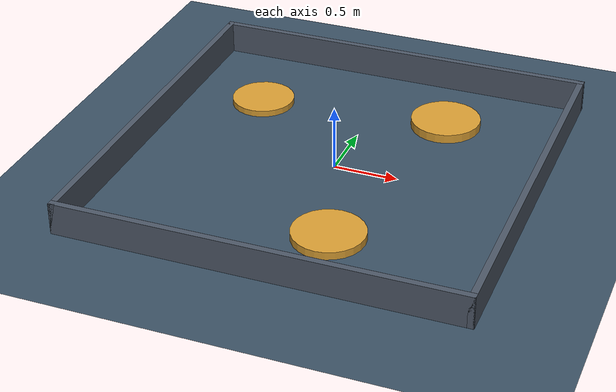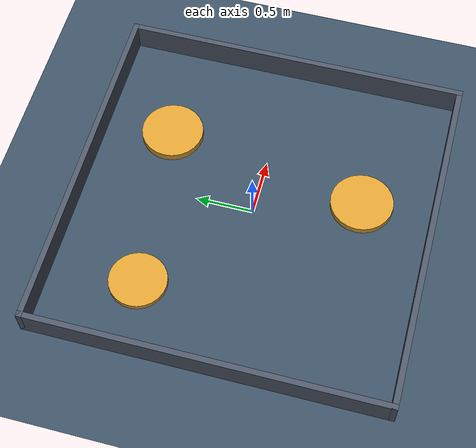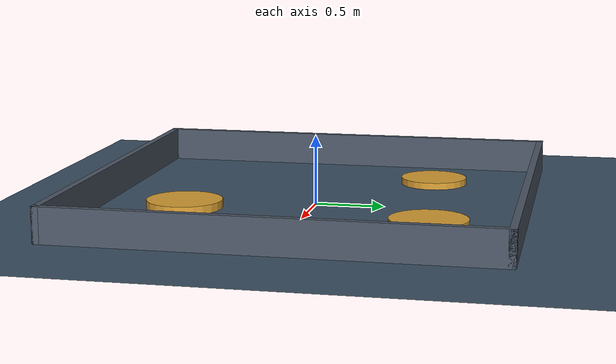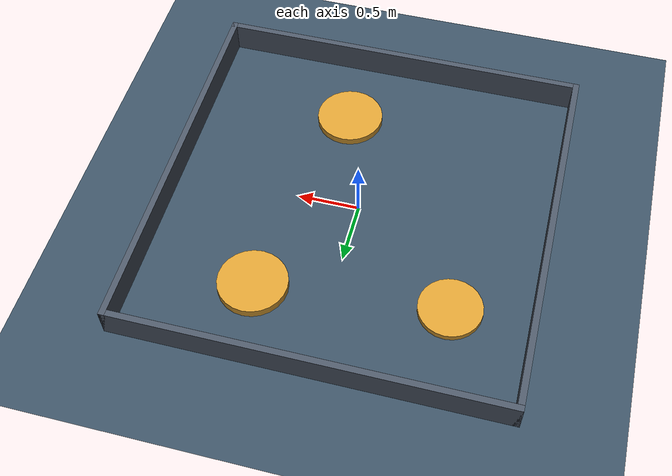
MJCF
<?xml version="1.0" encoding="utf-8"?>
<mujoco model="map_relief">

  <compiler meshdir="../model/assets" />
  <option timestep="0.001" gravity="0 0 -9.81" />
  <visual>
    <headlight diffuse="0.6 0.6 0.6" ambient="0.3 0.3 0.3" specular="0 0 0" />
    <rgba haze="0.15 0.25 0.35 1" />
    <global azimuth="135" elevation="-25" />
    <quality shadowsize="4096" />
  </visual>
<asset>
    <texture type="2d" name="groundplane" builtin="checker" mark="edge" rgb1="0.2 0.3 0.4" rgb2="0.1 0.2 0.3" markrgb="0.8 0.8 0.8" width="300" height="300" />
    <material name="groundplane" texture="groundplane" texuniform="true" texrepeat="5 5" reflectance="0.2" />
    <texture type="skybox" builtin="gradient" rgb1="0.3 0.5 0.7" rgb2="0 0 0" width="512" height="3072" />
    <texture name="ground" type="2d" builtin="checker" width="128" height="128" rgb1="0.28 0.38 0.46" rgb2="0.18 0.25 0.32" markrgb="0.52 0.62 0.68" />
    <material name="ground" texture="ground" texrepeat="8 8" reflectance="0.12" />
    <material name="wall" rgba="0.30 0.34 0.40 1" reflectance="0.05" />
    <material name="bump" rgba="0.85 0.62 0.20 1" reflectance="0.08" />
  </asset>
  <worldbody>
    <light pos="0 0 3" dir="0 0 -1" directional="true" castshadow="true" />
<geom name="floor" type="plane" size="0 0 0.05" material="ground" />
    <geom name="wall_px" type="box" pos="1.525 0 0.125" size="0.025 1.55 0.125" material="wall" />
    <geom name="wall_nx" type="box" pos="-1.525 0 0.125" size="0.025 1.55 0.125" material="wall" />
    <geom name="wall_py" type="box" pos="0 1.525 0.125" size="1.55 0.025 0.125" material="wall" />
    <geom name="wall_ny" type="box" pos="0 -1.525 0.125" size="1.55 0.025 0.125" material="wall" />
    <geom name="bump_1" type="cylinder" pos="0.3 -0.9 0.03" size="0.275 0.03" material="bump" />
    <geom name="bump_2" type="cylinder" pos="-0.9 0.75 0.025" size="0.25 0.025" material="bump" />
    <geom name="bump_3" type="cylinder" pos="0.6 0.9 0.035" size="0.275 0.035" material="bump" />
  </worldbody>
</mujoco>
